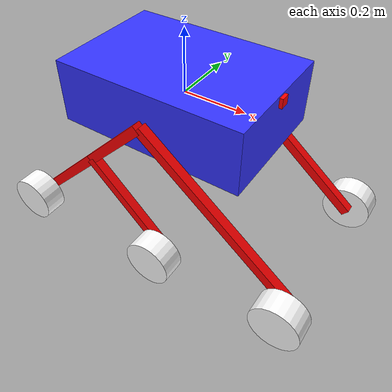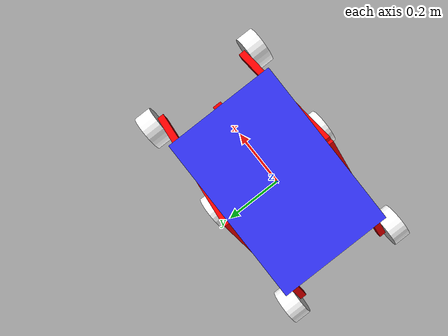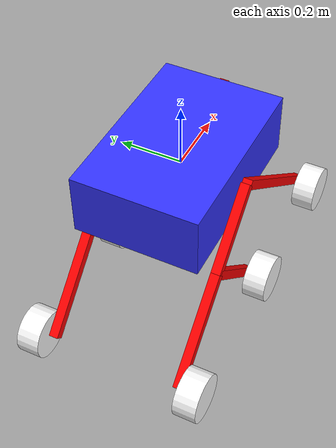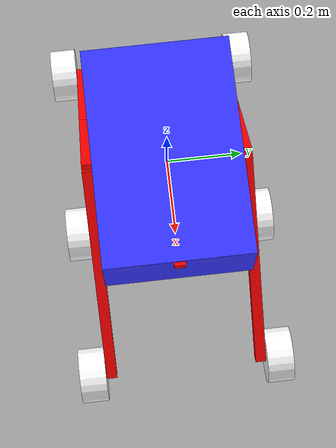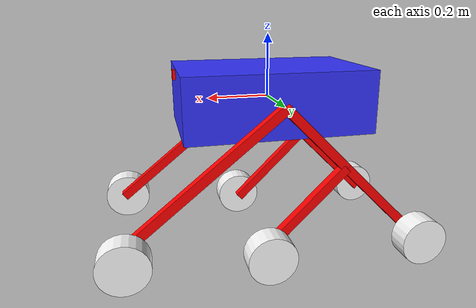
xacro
<?xml version="1.0"?>
<robot xmlns:xacro="http://www.ros.org/wiki/xacro"  name="robot">

    <xacro:include filename="robot_core.xacro" />
    <xacro:include filename="gazebo_control.xacro" />
    <xacro:include filename="depth_camera.xacro" />
    <xacro:include filename="imu.xacro" />

</robot>

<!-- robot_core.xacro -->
<robot xmlns:xacro="http://www.ros.org/wiki/xacro" >

    <xacro:include filename="inertial_macros.xacro"/>

    <material name="white">
        <color rgba="1 1 1 1" />
    </material>

    <material name="orange">
        <color rgba="1 0.3 0.1 1"/>
    </material>

    <material name="blue">
        <color rgba="0.2 0.2 1 1"/>
    </material>

    <material name="black">
        <color rgba="0 0 0 1"/>
    </material>

    <material name="red">
        <color rgba="1 0 0 1"/>
    </material>

    <!-- BASE LINK -->

    <link name="base_link">
    </link>

 <!-- BASEFOOTPRINT LINK -->

    <joint name="base_footprint_joint" type="fixed">
        <parent link="base_footprint"/>
        <child link="base_link"/>
        <origin xyz="0 0 0 " rpy="0 0 0"/>
    </joint>
    <link name="base_footprint">
    </link>

    <!-- CHASSIS LINK -->

    <joint name="chassis_joint" type="fixed">
        <parent link="base_link"/>
        <child link="chassis"/>
        <origin xyz="0 0 0"/>
    </joint>

    <link name="chassis">
        <visual>
            <geometry>
                <box size="0.6 0.4 0.2"/>
            </geometry>
            <origin xyz="0 0 0" rpy="0 0 0"/>
            <material name="blue"/>
        </visual>
        <collision>
            <geometry>
                <box size="0.6 0.4 0.2"/>
            </geometry>
            <origin xyz="0 0 0" rpy="0 0 0"/>
        </collision>
        <xacro:inertial_box mass="1" x="0.6" y="0.4" z="0.2">
            <origin xyz="0 0 0" rpy="0 0 0"/>
        </xacro:inertial_box>
    </link>

    <gazebo reference="chassis">
        <material>Gazebo/White</material>
    </gazebo>

    <link name="left_diff_link" />

    <joint name="left_diff_joint" type="fixed">
        <parent link="base_link"/>
        <child link="left_diff_link"/>
        <axis xyz="0 0 1"/>
        <origin rpy="-${pi/2} 0 0" xyz="0 0.215 0"/>
        <limit lower="-3.14" upper="3.14" effort="10" velocity="1"/>
    </joint>

    <link name="l_rod_1">
        <visual>
            <geometry>
                <box size="0.03 0.03 0.64"/>
            </geometry>
            <material name="red"/>
            <origin xyz="0 0 -0.32" rpy="0 0 0"/>
        </visual>
        <collision>
            <geometry>
                <box size="0.03 0.03 0.64"/>
            </geometry>
            <material name="red"/>
            <origin xyz="0 0 -0.32" rpy="0 0 0"/>
        </collision>
        <xacro:inertial_box mass="0.5" x="0.03" y="0.03" z="0.64">
            <origin xyz="0 0 -0.32" rpy="0 0 0"/>
        </xacro:inertial_box>
    </link>

    <link name="l_rod_2">
        <visual>
            <geometry>
                <box size="0.03 0.03 0.28"/>
            </geometry>
            <material name="red"/>
            <origin xyz="0 0 -0.14" rpy="0 0 0"/>
        </visual>
        <collision>
            <geometry>
                <box size="0.03 0.03 0.28"/>
            </geometry>
            <material name="red"/>
            <origin xyz="0 0 -0.14" rpy="0 0 0"/>
        </collision>
        <xacro:inertial_box mass="0.5" x="0.03" y="0.03" z="0.28">
            <origin xyz="0 0 -0.14" rpy="0 0 0"/>
        </xacro:inertial_box>

    </link>

    <link name="left_rod2_sub_link" />

    <link name="l_rod_3">
        <visual>
            <geometry>
                <box size="0.03 0.03 0.36"/>
            </geometry>
            <material name="red"/>
            <origin xyz="0 0 -0.18" rpy="0 0 0"/>
        </visual>
        <collision>
            <geometry>
                <box size="0.03 0.03 0.36"/>
            </geometry>
            <material name="red"/>
            <origin xyz="0 0 -0.18" rpy="0 0 0"/>
        </collision>
        <xacro:inertial_box mass="0.5" x="0.03" y="0.03" z="0.36">
            <origin xyz="0 0 -0.18" rpy="0 0 0"/>
        </xacro:inertial_box>
    </link>

    <link name="l_rod_4">
        <visual>
            <geometry>
                <box size="0.03 0.03 0.36"/>
            </geometry>
            <material name="red"/>
            <origin xyz="0 0 -0.18" rpy="0 0 0"/>
        </visual>
        <collision>
            <geometry>
                <box size="0.03 0.03 0.36"/>
            </geometry>
            <material name="red"/>
            <origin xyz="0 0 -0.18" rpy="0 0 0"/>
        </collision>
        <xacro:inertial_box mass="0.5" x="0.03" y="0.03" z="0.36">
            <origin xyz="0 0 -0.18" rpy="0 0 0"/>
        </xacro:inertial_box>
    </link>

    <joint name="left_diff_rod1" type="fixed">
        <parent link="left_diff_link"/>
        <child link="l_rod_1"/>
        <axis xyz="0 0 1"/>
        <origin rpy="${pi/2} 0 -0.895" xyz="0 0 0"/>
    </joint>

    <joint name="left_diff_rod2" type="fixed">
        <parent link="left_diff_link"/>
        <child link="l_rod_2"/>
        <axis xyz="0 0 1"/>
        <origin rpy="${pi/2} 0 0.785" xyz="0 0 0"/>
    </joint>

    <joint name="left_rod2_sub_rod1_joint" type="fixed">
        <parent link="left_rod2_sub_link"/>
        <child link="l_rod_3"/>
        <origin rpy="${pi/2} 0 0" xyz="0 0 0"/>
    </joint>

    <joint name="left_rod2_sub_joint" type="continuous">
        <parent link="l_rod_2"/>
        <child link="left_rod2_sub_link"/>
        <axis xyz="0 0 1"/>
        <origin rpy="-${pi/2} 0 0" xyz="0 0 -0.28"/>
        <limit lower="-3.14" upper="3.14" effort="10" velocity="1"/>
    </joint>

    <joint name="left_rod2_sub_rod2_joint" type="fixed">
        <parent link="left_rod2_sub_link"/>
        <child link="l_rod_4"/>
        <origin rpy="${pi/2} 0 -1.588" xyz="0 0 0"/>
    </joint>

    <link name="right_diff_link" />

    <link name="r_rod_1">
        <visual>
            <geometry>
                <box size="0.03 0.03 0.64"/>
            </geometry>
            <material name="red"/>
            <origin xyz="0 0 -0.32" rpy="0 0 0"/>
        </visual>
        <collision>
            <geometry>
                <box size="0.03 0.03 0.64"/>
            </geometry>
            <material name="red"/>
            <origin xyz="0 0 -0.32" rpy="0 0 0"/>
        </collision>
        <xacro:inertial_box mass="0.5" x="0.03" y="0.03" z="0.64">
            <origin xyz="0 0 -0.32" rpy="0 0 0"/>
        </xacro:inertial_box>
    </link>

    <link name="r_rod_2">
        <visual>
            <geometry>
                <box size="0.03 0.03 0.28"/>
            </geometry>
            <material name="red"/>

            <origin xyz="0 0 -0.14" rpy="0 0 0"/>
        </visual>
        <collision>
            <geometry>
                <box size="0.03 0.03 0.28"/>
            </geometry>
            <material name="red"/>

            <origin xyz="0 0 -0.14" rpy="0 0 0"/>
        </collision>
        <xacro:inertial_box mass="0.5" x="0.03" y="0.03" z="0.28">
            <origin xyz="0 0 -0.14" rpy="0 0 0"/>
        </xacro:inertial_box>
    </link>

    <link name="right_rod2_sub_link" />

    <link name="r_rod_3">
        <visual>
            <geometry>
                <box size="0.03 0.03 0.36"/>
            </geometry>
            <material name="red"/>
            <origin xyz="0 0 -0.18" rpy="0 0 0"/>
        </visual>
        <collision>
            <geometry>
                <box size="0.03 0.03 0.36"/>
            </geometry>
            <material name="red"/>
            <origin xyz="0 0 -0.18" rpy="0 0 0"/>
        </collision>
        <xacro:inertial_box mass="0.5" x="0.03" y="0.03" z="0.36">
            <origin xyz="0 0 -0.18" rpy="0 0 0"/>
        </xacro:inertial_box>
    </link>

    <link name="r_rod_4">
        <visual>
            <geometry>
                <box size="0.03 0.03 0.36"/>
            </geometry>
            <material name="red"/>
            <origin xyz="0 0 -0.18" rpy="0 0 0"/>
        </visual>
        <collision>
            <geometry>
                <box size="0.03 0.03 0.36"/>
            </geometry>
            <material name="red"/>
            <origin xyz="0 0 -0.18" rpy="0 0 0"/>
        </collision>
        <xacro:inertial_box mass="0.5" x="0.03" y="0.03" z="0.36">
            <origin xyz="0 0 -0.18" rpy="0 0 0"/>
        </xacro:inertial_box>
    </link>

    <joint name="right_diff_joint" type="fixed">
        <parent link="base_link"/>
        <child link="right_diff_link"/>
        <axis xyz="0 0 1"/>
        <origin rpy="-${pi/2} 0 0" xyz="0 -0.215 0"/>
        <limit lower="-3.14" upper="3.14" effort="10" velocity="1"/>
    </joint>

    <joint name="right_diff_rod1" type="fixed">
        <parent link="right_diff_link"/>
        <child link="r_rod_1"/>
        <axis xyz="0 0 1"/>
        <origin rpy="${pi/2} 0 -0.895" xyz="0 0 0"/>
    </joint>

    <joint name="right_diff_rod2" type="fixed">
        <parent link="right_diff_link"/>
        <child link="r_rod_2"/>
        <axis xyz="0 0 1"/>
        <origin rpy="${pi/2} 0 0.785" xyz="0 0 0"/>
    </joint>

    <joint name="right_rod2_sub_joint" type="continuous">
        <parent link="r_rod_2"/>
        <child link="right_rod2_sub_link"/>
        <axis xyz="0 0 1"/>
        <origin rpy="-${pi/2} 0 0" xyz="0 0 -0.28"/>
        <limit lower="-3.14" upper="3.14" effort="10" velocity="1"/>
    </joint>

    <joint name="right_rod2_sub_rod1_joint" type="fixed">
        <parent link="right_rod2_sub_link"/>
        <child link="r_rod_3"/>
        <origin rpy="${pi/2} 0 0" xyz="0 0 0"/>
    </joint>

    <joint name="right_rod2_sub_rod2_joint" type="fixed">
        <parent link="right_rod2_sub_link"/>
        <child link="r_rod_4"/>
        <origin rpy="${pi/2} 0 -1.588" xyz="0 0 0"/>
    </joint>

   <link name="left_wheel1">
        <visual>
            <geometry>
                <cylinder radius="0.078" length="0.075"/>
            </geometry>
            <origin xyz="0 0 0.0525" rpy="0 0 0"/>
            <material name="white"/>
        </visual>
        <collision>
            <geometry>
                <cylinder radius="0.078" length="0.075"/>
            </geometry>
            <origin xyz="0 0 0.0525" rpy="0 0 0"/>
            <material name="white"/>
        </collision>
        <xacro:inertial_cylinder mass="0.5" radius="0.078" length="0.075" >
            <origin xyz="0 0 0.0525" rpy="0 0 0"/>
        </xacro:inertial_cylinder>
    </link>

    <link name="left_wheel2">
        <visual>
            <geometry>
                <cylinder radius="0.078" length="0.075"/>
            </geometry>
            <origin xyz="0 0 0.0525" rpy="0 0 0"/>
            <material name="white"/>
        </visual>
        <collision>
            <geometry>
                <cylinder radius="0.078" length="0.075"/>
            </geometry>
            <origin xyz="0 0 0.0525" rpy="0 0 0"/>
            <material name="white"/>
        </collision>
        <xacro:inertial_cylinder mass="0.5" radius="0.078" length="0.075" >
            <origin xyz="0 0 0.0525" rpy="0 0 0"/>
        </xacro:inertial_cylinder>
    </link>

    <link name="left_wheel3">
        <visual>
            <geometry>
                <cylinder radius="0.078" length="0.075"/>
            </geometry>
            <origin xyz="0 0 0.0525" rpy="0 0 0"/>
            <material name="white"/>
        </visual>
        <collision>
            <geometry>
                <cylinder radius="0.078" length="0.075"/>
            </geometry>
            <origin xyz="0 0 0.0525" rpy="0 0 0"/>
            <material name="white"/>
        </collision>
        <xacro:inertial_cylinder mass="0.5" radius="0.078" length="0.075" >
            <origin xyz="0 0 0.0525" rpy="0 0 0"/>
        </xacro:inertial_cylinder>
    </link>

    <link name="right_wheel1">
        <visual>
            <geometry>
                <cylinder radius="0.078" length="0.075"/>
            </geometry>
            <origin xyz="0 0 0.0525" rpy="0 0 0"/>
            <material name="white"/>
        </visual>
        <collision>
            <geometry>
                <cylinder radius="0.078" length="0.075"/>
            </geometry>
            <origin xyz="0 0 0.0525" rpy="0 0 0"/>
            <material name="white"/>
        </collision>
        <xacro:inertial_cylinder mass="0.5" radius="0.078" length="0.075" >
            <origin xyz="0 0 0.0525" rpy="0 0 0"/>
        </xacro:inertial_cylinder>
    </link>

    <link name="right_wheel2">
        <visual>
            <geometry>
                <cylinder radius="0.078" length="0.075"/>
            </geometry>
            <origin xyz="0 0 0.0525" rpy="0 0 0"/>
            <material name="white"/>
        </visual>
        <collision>
            <geometry>
                <cylinder radius="0.078" length="0.075"/>
            </geometry>
            <origin xyz="0 0 0.0525" rpy="0 0 0"/>
            <material name="white"/>
        </collision>
        <xacro:inertial_cylinder mass="0.5" radius="0.078" length="0.075" >
            <origin xyz="0 0 0.0525" rpy="0 0 0"/>
        </xacro:inertial_cylinder>
    </link>

    <link name="right_wheel3">
        <visual>
            <geometry>
                <cylinder radius="0.078" length="0.075"/>
            </geometry>
            <origin xyz="0 0 0.0525" rpy="0 0 0"/>
            <material name="white"/>
        </visual>
        <collision>
            <geometry>
                <cylinder radius="0.078" length="0.075"/>
            </geometry>
            <origin xyz="0 0 0.0525" rpy="0 0 0"/>
            <material name="white"/>
        </collision>
        <xacro:inertial_cylinder mass="0.5" radius="0.078" length="0.075" >
            <origin xyz="0 0 0.0525" rpy="0 0 0"/>
        </xacro:inertial_cylinder>
    </link>

    <joint name="rear_left_wheel_joint" type="continuous">
        <parent link="l_rod_3"/>
        <child link="left_wheel2"/>
        <axis xyz="0 0 1"/>
        <origin rpy="-${pi/2} 0 0" xyz="0  0 -0.358"   />
   </joint>

   <joint name="rear_right_wheel_joint" type="continuous">
        <parent link="r_rod_3"/>
        <child link="right_wheel2"/>
        <axis xyz="0 0 -1"/>
        <origin rpy="${pi/2} 0 0" xyz="0  0 -0.358"   />
   </joint>

    <joint name="middle_left_wheel_joint" type="continuous">
        <parent link="l_rod_4"/>
        <child link="left_wheel3"/>
        <axis xyz="0 0 1"/>
        <origin rpy="-${pi/2} 0 0" xyz="0  0 -0.358"/>
   </joint>

   <joint name="middle_right_wheel_joint" type="continuous">
        <parent link="r_rod_4"/>
        <child link="right_wheel3"/>
        <axis xyz="0 0 -1"/>
        <origin rpy="${pi/2} 0 0" xyz="0  0 -0.358"/>
   </joint>

    <joint name="front_right_wheel_joint" type="continuous">
        <parent link="base_footprint"/>
        <child link="right_wheel1"/>
        <axis xyz="0 0 -1"/>
        <origin xyz="0.49 -0.215 -0.4117" rpy="${pi/2} 0 0"/>
   </joint>

   <joint name="front_left_wheel_joint" type="continuous">
        <parent link="base_footprint"/>
        <child link="left_wheel1"/>
        <axis xyz="0 0 1"/>
        <origin xyz="0.49 0.215 -0.4117" rpy="-${pi/2} 0 0"/>
   </joint>

    <gazebo reference="left_wheel1">
        <material>Gazebo/Grey</material>
        <mu1 value="0.1"/>
        <mu2 value="0.095"/>
    </gazebo>
        <gazebo reference="right_wheel1">
        <material>Gazebo/Grey</material>
        <mu1 value="0.1"/>
        <mu2 value="0.095"/>
    </gazebo>
        <gazebo reference="left_wheel2">
        <material>Gazebo/Grey</material>
        <mu1 value="0.1"/>
        <mu2 value="0.095"/>
    </gazebo>
        <gazebo reference="right_wheel2">
        <material>Gazebo/Grey</material>
        <mu1 value="0.1"/>
        <mu2 value="0.095"/>
    </gazebo>

</robot>

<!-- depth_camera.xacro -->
<robot xmlns:xacro="http://www.ros.org/wiki/xacro" >

    <joint name="camera_joint" type="fixed">
        <parent link="chassis"/>
        <child link="camera_link"/>
        <origin xyz="0.305 0 0.08" rpy="0 0 0"/>
    </joint>

    <link name="camera_link">
        <visual>
            <geometry>
                <box size="0.010 0.03 0.03"/>
            </geometry>
            <material name="red"/>
        </visual>
    </link>

    <joint name="camera_optical_joint" type="fixed">
        <parent link="camera_link"/>
        <child link="camera_link_optical"/>
        <origin xyz="0 0 0" rpy="${-pi/2} 0 ${-pi/2}"/>
    </joint>

    <link name="camera_link_optical"></link>

    <gazebo reference="camera_link">
        <material>Gazebo/Red</material>

        <sensor name="camera" type="depth">
            <pose> 0 0 0 0 0 0 </pose>
            <visualize>true</visualize>
            <update_rate>30</update_rate>
            <camera>
                <horizontal_fov>1.089</horizontal_fov>
                <image>
                    <format>B8G8R8</format>
                    <width>640</width>
                    <height>480</height>
                </image>
                <clip>
                    <near>0.05</near>
                    <far>8.0</far>
                </clip>
            </camera>
            <plugin name="camera_controller" filename="libgazebo_ros_camera.so">
                <frame_name>camera_link_optical</frame_name>
                <min_depth>0.1</min_depth>
                <max_depth>100.0</max_depth>
                <alwaysOn>true</alwaysOn>
                <imageTopicName>image_raw</imageTopicName>
                <cameraInfoTopicName>camera_info</cameraInfoTopicName>
                <updateRate>30.0</updateRate>
                <cameraName>usb_cam</cameraName>
                <CxPrime>320.5</CxPrime>
                <Cx>320.5</Cx>
                <Cy>240.5</Cy>
                <hackBaseline>0</hackBaseline>
                <focalLength>320.000101</focalLength>
                <distortionK1>0.0</distortionK1>
                <distortionK2>0.0</distortionK2>
                <distortionK3>0.0</distortionK3>
                <distortionT1>0.0</distortionT1>
                <distortionT2>0.0</distortionT2>
            </plugin>
        </sensor>
    </gazebo>

</robot>

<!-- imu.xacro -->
<robot xmlns:xacro="http://www.ros.org/wiki/xacro" >

    <joint name="imu_joint" type="fixed">
        <parent link="chassis"/>
        <child link="imu_link"/>
        <origin xyz="0.305 0 0.08" rpy="0 0 0"/>
    </joint>

    <link name="imu_link">
        <visual>
            <geometry>
                <box size="0.010 0.03 0.03"/>
            </geometry>
            <material name="red"/>
        </visual>
    </link>

    <gazebo reference="imu_link">
        <material>Gazebo/Red</material>
        <gravity>true</gravity>
        <sensor name="imu_sensor" type="imu">
        <always_on>true</always_on>
        <update_rate>100</update_rate>
        <visualize>true</visualize>
        <topic>__default_topic__</topic>
        <plugin filename="libgazebo_ros_imu_sensor.so" name="imu">
            <topicName>imu</topicName>
            <bodyName>imu_link</bodyName>
            <updateRateHZ>10.0</updateRateHZ>
            <gaussianNoise>0.0</gaussianNoise>
            <xyzOffset>0 0 0</xyzOffset>
            <rpyOffset>0 0 0</rpyOffset>
            <frameName>imu_link</frameName>
            <initialOrientationAsReference>false</initialOrientationAsReference>
        </plugin>
        <pose>0 0 0 0 0 0</pose>
        </sensor>
    </gazebo>
</robot>
